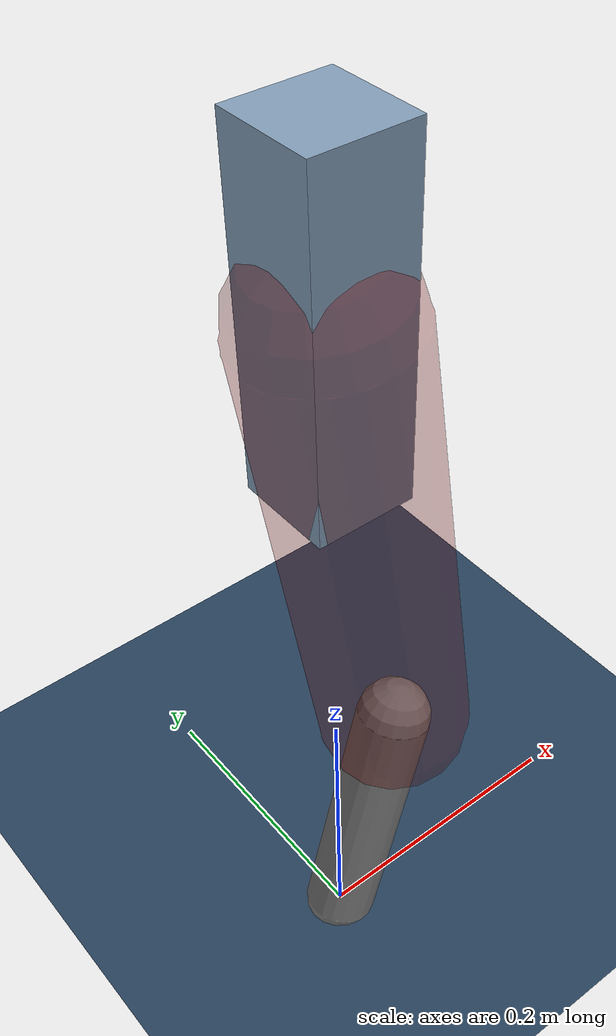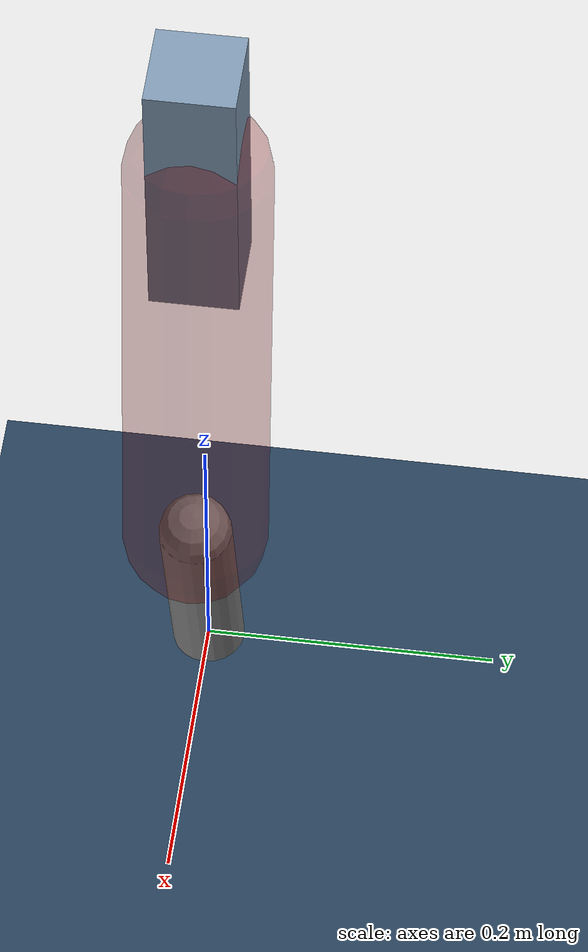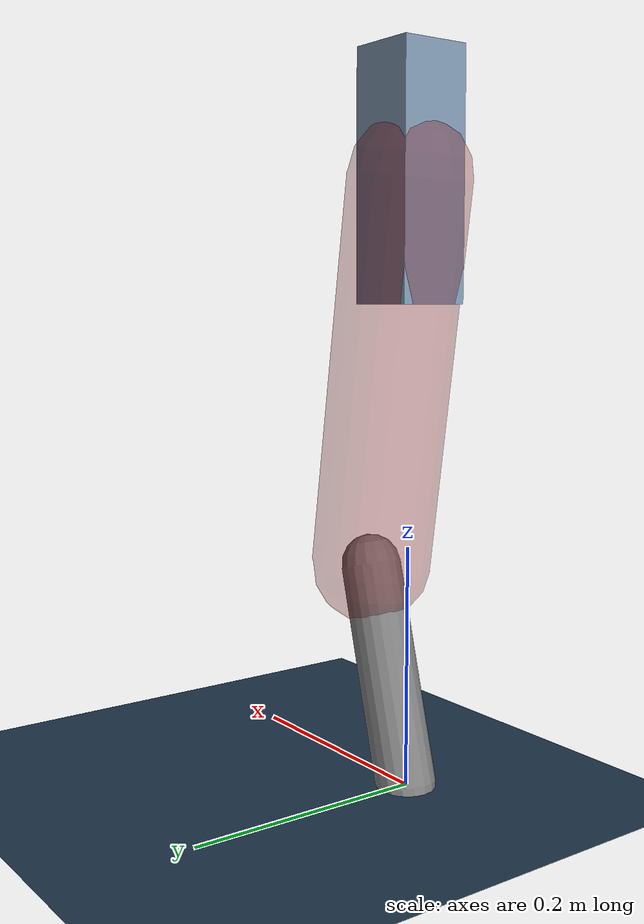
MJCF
<mujoco model="Hopper2D">
	<compiler inertiafromgeom="true" angle="radian" />
	<option timestep="0.001" integrator="implicit" cone="elliptic" solver="Newton" tolerance="1e-10" />

	<default>
		<geom contype="1" conaffinity="1" condim="3" friction="2 0.005 0.0001" solref="0.005 1" />
		<joint limited="true" damping="0.1" />
	</default>

	<asset>
		<texture name="skybox" type="skybox" builtin="gradient" rgb1=".4 .6 .8" rgb2="0 0 0" width="800" height="800" />
		<texture name="grid" type="2d" builtin="checker" rgb1=".1 .2 .3" rgb2=".2 .3 .4" width="300" height="300" mark="edge" markrgb=".2 .3 .4" />
		<material name="ground" texture="grid" texrepeat="1 1" texuniform="true" reflectance="0.1" />
		<material name="leg" rgba="0.5 0.6 0.7 1" />
	</asset>

	<worldbody>

		<geom name="floor" type="plane" size="5 5 0.25" material="ground" />

		<light directional="false" diffuse="0.8 0.8 0.8" specular="0.3 0.3 0.3" pos="0 0 2" dir="0 0 -1" />
		<light mode="targetbodycom" target="base" directional="false" diffuse="0.8 0.8 0.8" specular="0.3 0.3 0.3" pos="0 0 2" dir="0 0 -1" />

		<camera name="fixed" pos="0 -2 1" xyaxes="1 0 0 0 0 1" />
		<camera name="tracking" mode="trackcom" pos="0 -3 1" />

		<body name="root" pos="0 0 0.49624028205671156">
			<joint name="slide_x" type="slide" axis="1 0 0" range="-100 100" />
			<joint name="slide_z" type="slide" axis="0 0 1" range="0 10" />

			<body name="base" pos="0 0 0">
				<geom name="torso" type="box" size="0.03 0.03 0.1" mass="3.7670000000000003" material="leg" />

				<body name="link1" pos="0 0 0" euler="0 1.420474471548542 0">
					<joint type="hinge" axis="0 -1 0" pos="0 0 0" name="hinge1" limited="true" range="-3.14 3.14" stiffness="0" damping="0.1" />
					<geom name="thigh" type="capsule" fromto="0 0 0 0.32138746272452395 0 0" size="0.05" rgba="0.5 0 0 0.3" mass="1.0470461493562147" />

					<body name="link2" pos="0.32138746272452395 0 0" euler="0 0.4137255184199391 0">
						<joint type="hinge" axis="0 -1 0" pos="0 0 0" name="hinge2" limited="true" range="-3.14 3.14" stiffness="0" damping="0.1" />
						<geom name="shank" type="capsule" fromto="0 0 0 0.18485281933218767 0 0" size="0.025" mass="0.3880675373989689" />

					</body>
				</body>
			</body>
		</body>
	</worldbody>

	<actuator>
		<motor name="torque1" joint="hinge1" ctrlrange="-194.10953757700915 194.10953757700915" ctrllimited="true" gear="1" />
		<motor name="torque2" joint="hinge2" ctrlrange="-49.29505418835079 49.29505418835079" ctrllimited="true" gear="1" />
	</actuator>
</mujoco>
